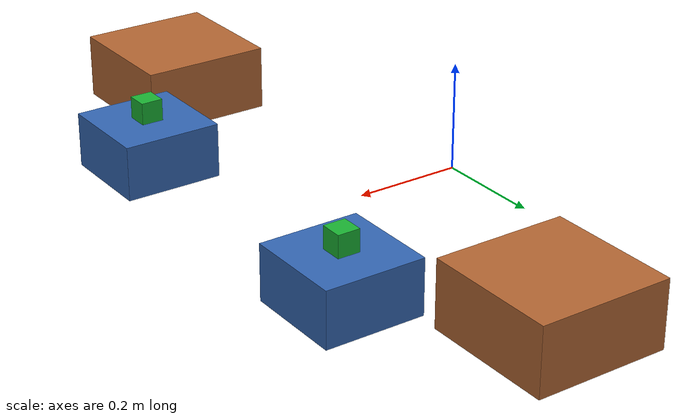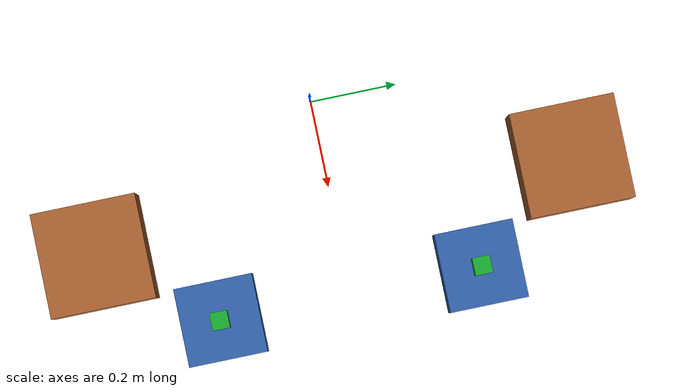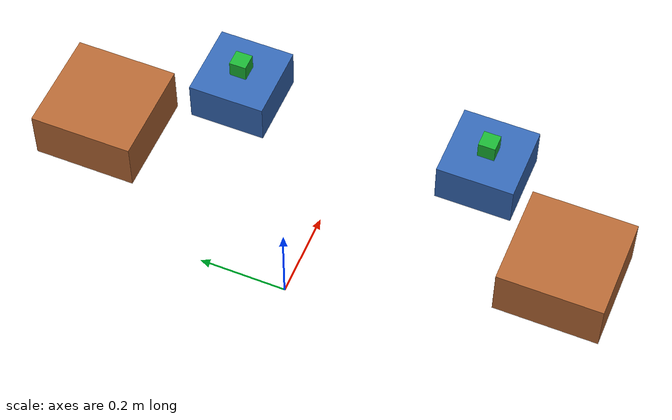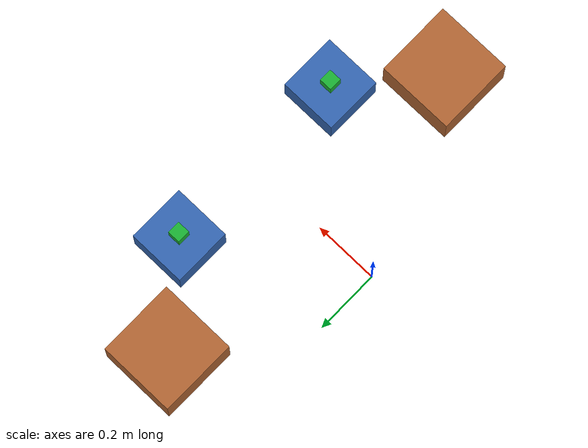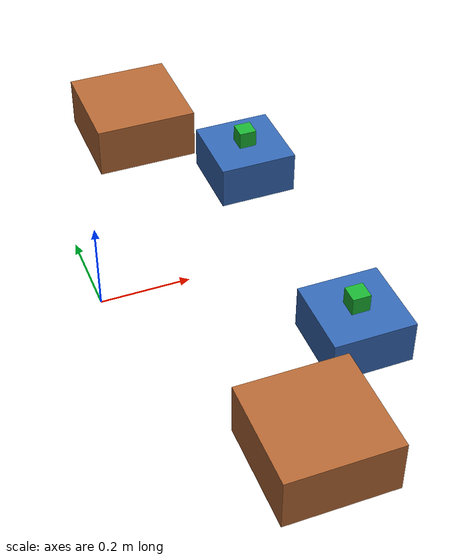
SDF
<?xml version="1.0" ?>
<sdf version="1.6">
  <world name="config_1">

    <!-- ── lane 1 ────────────────────────────────────────────────────────── -->
    <model name="source_1">
      <static>true</static>
      <pose>0.45 0.30 0.05 0 0 0</pose>
      <link name="link">
        <collision name="collision"><geometry><box><size>0.18 0.18 0.10</size></box></geometry></collision>
        <visual name="visual"><geometry><box><size>0.18 0.18 0.10</size></box></geometry>
          <material><ambient>0.2 0.4 0.7 1</ambient><diffuse>0.2 0.4 0.7 1</diffuse></material></visual>
      </link>
    </model>
    <model name="sink_1">
      <static>true</static>
      <pose>0.25 0.55 0.06 0 0 0</pose>
      <link name="link">
        <collision name="collision"><geometry><box><size>0.24 0.24 0.12</size></box></geometry></collision>
        <visual name="visual"><geometry><box><size>0.24 0.24 0.12</size></box></geometry>
          <material><ambient>0.7 0.4 0.2 1</ambient><diffuse>0.7 0.4 0.2 1</diffuse></material></visual>
      </link>
    </model>

    <!-- ── lane 2 ────────────────────────────────────────────────────────── -->
    <model name="source_2">
      <static>true</static>
      <pose>0.45 -0.30 0.05 0 0 0</pose>
      <link name="link">
        <collision name="collision"><geometry><box><size>0.18 0.18 0.10</size></box></geometry></collision>
        <visual name="visual"><geometry><box><size>0.18 0.18 0.10</size></box></geometry>
          <material><ambient>0.2 0.4 0.7 1</ambient><diffuse>0.2 0.4 0.7 1</diffuse></material></visual>
      </link>
    </model>
    <model name="sink_2">
      <static>true</static>
      <pose>0.25 -0.55 0.06 0 0 0</pose>
      <link name="link">
        <collision name="collision"><geometry><box><size>0.24 0.24 0.12</size></box></geometry></collision>
        <visual name="visual"><geometry><box><size>0.24 0.24 0.12</size></box></geometry>
          <material><ambient>0.7 0.4 0.2 1</ambient><diffuse>0.7 0.4 0.2 1</diffuse></material></visual>
      </link>
    </model>

    <!-- ── source parts (one 40 mm cube per source; grasp = DetachableJoint) ─ -->
    <model name="cube_1">
      <pose>0.45 0.30 0.12 0 0 0</pose>
      <link name="link">
        <inertial><mass>0.05</mass>
          <inertia><ixx>1.33e-5</ixx><iyy>1.33e-5</iyy><izz>1.33e-5</izz><ixy>0</ixy><ixz>0</ixz><iyz>0</iyz></inertia></inertial>
        <collision name="collision"><geometry><box><size>0.04 0.04 0.04</size></box></geometry>
          <surface><friction><ode><mu>1.0</mu><mu2>1.0</mu2></ode></friction></surface></collision>
        <visual name="visual"><geometry><box><size>0.04 0.04 0.04</size></box></geometry>
          <material><ambient>0.1 0.7 0.2 1</ambient><diffuse>0.1 0.7 0.2 1</diffuse></material></visual>
      </link>
      <plugin filename="gz-sim-detachable-joint-system" name="gz::sim::systems::DetachableJoint">
        <parent_link>link</parent_link>
        <child_model>ur5_with_gripper</child_model>
        <child_link>wrist_3_link</child_link>
        <attach_topic>/cube_1/attach</attach_topic>
        <detach_topic>/cube_1/detach</detach_topic>
        <output_topic>/cube_1/state</output_topic>
        <suppress_child_warning>true</suppress_child_warning>
      </plugin>
    </model>
    <model name="cube_2">
      <pose>0.45 -0.30 0.12 0 0 0</pose>
      <link name="link">
        <inertial><mass>0.05</mass>
          <inertia><ixx>1.33e-5</ixx><iyy>1.33e-5</iyy><izz>1.33e-5</izz><ixy>0</ixy><ixz>0</ixz><iyz>0</iyz></inertia></inertial>
        <collision name="collision"><geometry><box><size>0.04 0.04 0.04</size></box></geometry>
          <surface><friction><ode><mu>1.0</mu><mu2>1.0</mu2></ode></friction></surface></collision>
        <visual name="visual"><geometry><box><size>0.04 0.04 0.04</size></box></geometry>
          <material><ambient>0.1 0.7 0.2 1</ambient><diffuse>0.1 0.7 0.2 1</diffuse></material></visual>
      </link>
      <plugin filename="gz-sim-detachable-joint-system" name="gz::sim::systems::DetachableJoint">
        <parent_link>link</parent_link>
        <child_model>ur5_with_gripper</child_model>
        <child_link>wrist_3_link</child_link>
        <attach_topic>/cube_2/attach</attach_topic>
        <detach_topic>/cube_2/detach</detach_topic>
        <output_topic>/cube_2/state</output_topic>
        <suppress_child_warning>true</suppress_child_warning>
      </plugin>
    </model>

  </world>
</sdf>
